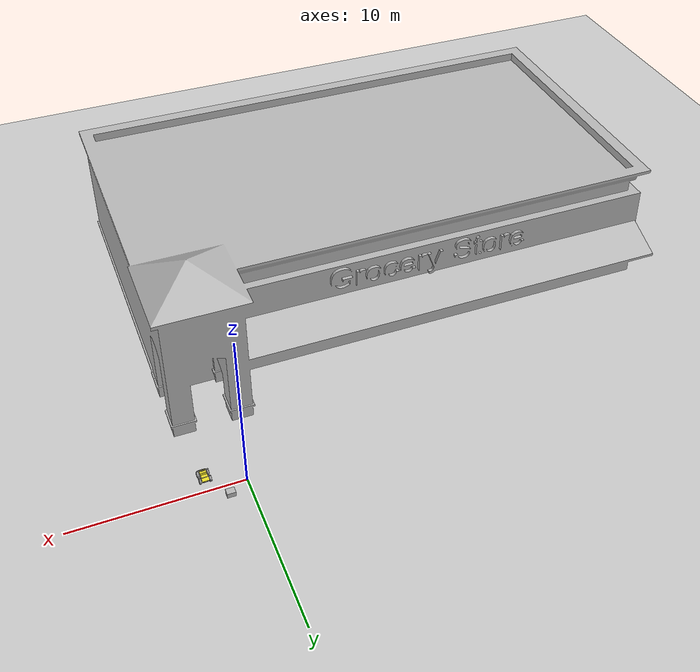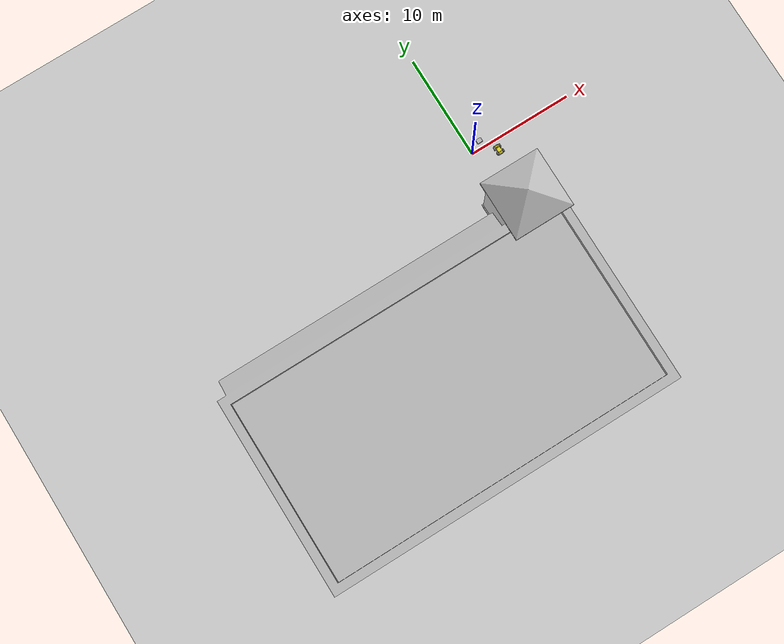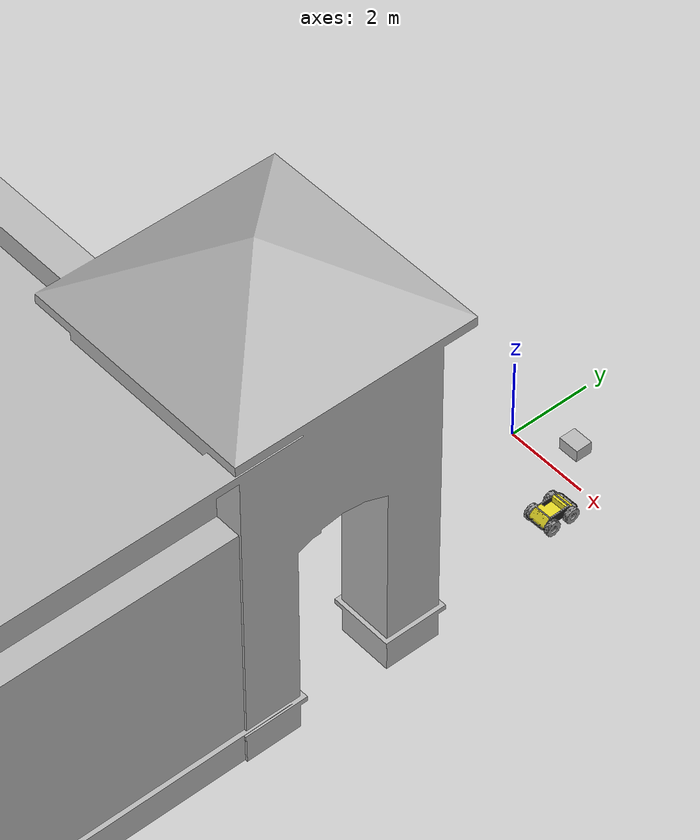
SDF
<sdf version="1.7">
 <world name="default">
  <light name="sun" type="directional">
   <pose>0 0 10 0 -0 0</pose>
   <diffuse>0.8 0.8 0.8 1</diffuse>
   <specular>0.2 0.2 0.2 1</specular>
   <attenuation>
    <range>1000</range>
    <constant>0.9</constant>
    <linear>0.01</linear>
    <quadratic>0.001</quadratic>
   </attenuation>
   <direction>-0.5 0.1 -0.9</direction>
   <spot><inner_angle>0</inner_angle><outer_angle>0</outer_angle><falloff>0</falloff></spot>
  </light>
  <model name="ground_plane">
   <static>1</static>
   <link name="link">
    <collision name="collision">
     <geometry><plane><normal>0 0 1</normal><size>100 100</size></plane></geometry>
     <surface>
      <contact><collide_bitmask>65535</collide_bitmask></contact>
      <friction><ode><mu>100</mu><mu2>50</mu2></ode></friction>
     </surface>
    </collision>
    <visual name="visual">
     <cast_shadows>0</cast_shadows>
     <geometry><plane><normal>0 0 1</normal><size>100 100</size></plane></geometry>
     <material>
      <script><uri>file://media/materials/scripts/gazebo.material</uri><name>Gazebo/Grey</name></script>
     </material>
    </visual>
   </link>
  </model>
  <gravity>0 0 -9.8</gravity>
  <magnetic_field>6e-06 2.3e-05 -4.2e-05</magnetic_field>
  <atmosphere type="adiabatic"/>
  <physics type="ode">
   <max_step_size>0.001</max_step_size>
   <real_time_factor>1</real_time_factor>
   <real_time_update_rate>1000</real_time_update_rate>
  </physics>
  <scene><ambient>0.4 0.4 0.4 1</ambient><background>0.7 0.7 0.7 1</background><shadows>0</shadows></scene>
  <spherical_coordinates>
   <surface_model>EARTH_WGS84</surface_model>
   <latitude_deg>0</latitude_deg>
   <longitude_deg>0</longitude_deg>
   <elevation>0</elevation>
   <heading_deg>0</heading_deg>
  </spherical_coordinates>
  <model name="husky">
   <pose>2.18473 -0.966425 0.142753 -0 -1e-05 1.59103</pose>
   <link name="base_link">
    <collision name="collision">
     <pose>0 0 0.1 0 -0 0</pose>
     <geometry><box><size>1.0074 0.5709 0.2675</size></box></geometry>
    </collision>
    <inertial>
     <mass>33.855</mass>
     <pose>-0.085613 -0.00084 0.238145 0 -0 0</pose>
     <inertia>
      <ixx>2.2343</ixx>
      <ixy>-0.023642</ixy>
      <ixz>0.275174</ixz>
      <iyy>3.42518</iyy>
      <iyz>0.00239624</iyz>
      <izz>2.1241</izz>
     </inertia>
    </inertial>
    <visual name="base">
     <geometry><mesh><uri>model://husky/meshes/base_link.stl</uri></mesh></geometry>
     <material><script><name>Gazebo/FlatBlack</name><uri>__default__</uri></script></material>
    </visual>
    <visual name="top_plate">
     <geometry><mesh><uri>model://husky/meshes/top_plate.stl</uri></mesh></geometry>
     <material><script><name>Gazebo/Yellow</name><uri>__default__</uri></script></material>
    </visual>
    <visual name="front_bumper">
     <pose>0.47 0 0.091 0 -0 0</pose>
     <geometry><mesh><uri>model://husky/meshes/bumper.stl</uri></mesh></geometry>
     <material><script><name>Gazebo/FlatBlack</name><uri>__default__</uri></script></material>
    </visual>
    <visual name="rear_bumper">
     <pose>-0.47 0 0.091 0 -0 3.141</pose>
     <geometry><mesh><uri>model://husky/meshes/bumper.stl</uri></mesh></geometry>
     <material><script><name>Gazebo/FlatBlack</name><uri>__default__</uri></script></material>
    </visual>
    <visual name="user_rail">
     <pose>0.272 0 0.245 0 -0 0</pose>
     <geometry><mesh><uri>model://husky/meshes/user_rail.stl</uri></mesh></geometry>
     <material><script><name>Gazebo/Grey</name><uri>__default__</uri></script></material>
    </visual>
   </link>
   <link name="back_left_wheel">
    <pose>-0.256 0.285475 0.035 0 -0 0</pose>
    <inertial>
     <mass>2.6357</mass>
     <inertia>
      <ixx>0.0246688</ixx>
      <ixy>0</ixy>
      <ixz>0</ixz>
      <iyy>0.0246688</iyy>
      <iyz>0</iyz>
      <izz>0.0441058</izz>
     </inertia>
    </inertial>
    <collision name="back_left_wheel_collision">
     <pose>0 0 0 -1.5707 0 0</pose>
     <geometry><cylinder><radius>0.17775</radius><length>0.1143</length></cylinder></geometry>
     <surface>
      <friction><ode><mu>100000</mu><mu2>100000</mu2><slip1>0</slip1><slip2>0</slip2></ode></friction>
     </surface>
    </collision>
    <visual name="back_left_wheel">
     <pose>0 0 0 -3.14159 0 0</pose>
     <geometry><mesh><uri>model://husky/meshes/wheel.stl</uri></mesh></geometry>
     <material><script><name>Gazebo/Grey</name><uri>__default__</uri></script></material>
    </visual>
   </link>
   <joint name="back_left_joint" type="revolute">
    <parent>base_link</parent>
    <child>back_left_wheel</child>
    <axis>
     <xyz expressed_in="__model__">0 1 0</xyz>
     <limit><lower>-1e+16</lower><upper>1e+16</upper></limit>
     <dynamics><spring_reference>0</spring_reference><spring_stiffness>0</spring_stiffness></dynamics>
    </axis>
    <physics><ode><limit><cfm>0</cfm><erp>0.9</erp></limit></ode></physics>
   </joint>
   <link name="back_right_wheel">
    <pose>-0.256 -0.285475 0.035 0 -0 0</pose>
    <inertial>
     <mass>2.6357</mass>
     <inertia>
      <ixx>0.0246688</ixx>
      <ixy>0</ixy>
      <ixz>0</ixz>
      <iyy>0.0246688</iyy>
      <iyz>0</iyz>
      <izz>0.0441058</izz>
     </inertia>
    </inertial>
    <collision name="back_right_wheel_collision">
     <pose>0 0 0 -1.5707 0 0</pose>
     <geometry><cylinder><radius>0.17775</radius><length>0.1143</length></cylinder></geometry>
     <surface>
      <friction><ode><mu>100000</mu><mu2>100000</mu2><slip1>0</slip1><slip2>0</slip2></ode></friction>
     </surface>
    </collision>
    <visual name="back_right_wheel">
     <pose>0 0 0 -3.14159 0 0</pose>
     <geometry><mesh><uri>model://husky/meshes/wheel.stl</uri></mesh></geometry>
     <material><script><name>Gazebo/Grey</name><uri>__default__</uri></script></material>
    </visual>
   </link>
   <joint name="back_right_joint" type="revolute">
    <parent>base_link</parent>
    <child>back_right_wheel</child>
    <axis>
     <xyz expressed_in="__model__">0 1 0</xyz>
     <limit><lower>-1e+16</lower><upper>1e+16</upper></limit>
     <dynamics><spring_reference>0</spring_reference><spring_stiffness>0</spring_stiffness></dynamics>
    </axis>
    <physics><ode><limit><cfm>0</cfm><erp>0.9</erp></limit></ode></physics>
   </joint>
   <link name="front_left_wheel">
    <pose>0.256 0.285475 0.035 0 -0 0</pose>
    <inertial>
     <mass>2.6357</mass>
     <inertia>
      <ixx>0.0246688</ixx>
      <ixy>0</ixy>
      <ixz>0</ixz>
      <iyy>0.0246688</iyy>
      <iyz>0</iyz>
      <izz>0.0441058</izz>
     </inertia>
    </inertial>
    <collision name="front_left_wheel_collision">
     <pose>0 0 0 -1.5707 0 0</pose>
     <geometry><cylinder><radius>0.17775</radius><length>0.1143</length></cylinder></geometry>
     <surface>
      <friction><ode><mu>100000</mu><mu2>100000</mu2><slip1>0</slip1><slip2>0</slip2></ode></friction>
     </surface>
    </collision>
    <visual name="front_left_wheel">
     <pose>0 0 0 -3.14159 0 0</pose>
     <geometry><mesh><uri>model://husky/meshes/wheel.stl</uri></mesh></geometry>
     <material><script><name>Gazebo/Grey</name><uri>__default__</uri></script></material>
    </visual>
   </link>
   <joint name="front_left_joint" type="revolute">
    <parent>base_link</parent>
    <child>front_left_wheel</child>
    <axis>
     <xyz expressed_in="__model__">0 1 0</xyz>
     <limit><lower>-1e+16</lower><upper>1e+16</upper></limit>
     <dynamics><spring_reference>0</spring_reference><spring_stiffness>0</spring_stiffness></dynamics>
    </axis>
    <physics><ode><limit><cfm>0</cfm><erp>0.9</erp></limit></ode></physics>
   </joint>
   <link name="front_right_wheel">
    <pose>0.256 -0.285475 0.035 0 -0 0</pose>
    <inertial>
     <mass>2.6357</mass>
     <inertia>
      <ixx>0.0246688</ixx>
      <ixy>0</ixy>
      <ixz>0</ixz>
      <iyy>0.0246688</iyy>
      <iyz>0</iyz>
      <izz>0.0441058</izz>
     </inertia>
    </inertial>
    <collision name="front_right_wheel_collision">
     <pose>0 0 0 -1.5707 0 0</pose>
     <geometry><cylinder><radius>0.17775</radius><length>0.1143</length></cylinder></geometry>
     <surface>
      <friction><ode><mu>100000</mu><mu2>100000</mu2><slip1>0</slip1><slip2>0</slip2></ode></friction>
     </surface>
    </collision>
    <visual name="front_right_wheel">
     <pose>0 0 0 -3.14159 0 0</pose>
     <geometry><mesh><uri>model://husky/meshes/wheel.stl</uri></mesh></geometry>
     <material><script><name>Gazebo/Grey</name><uri>__default__</uri></script></material>
    </visual>
   </link>
   <joint name="front_right_joint" type="revolute">
    <parent>base_link</parent>
    <child>front_right_wheel</child>
    <axis>
     <xyz expressed_in="__model__">0 1 0</xyz>
     <limit><lower>-1e+16</lower><upper>1e+16</upper></limit>
     <dynamics><spring_reference>0</spring_reference><spring_stiffness>0</spring_stiffness></dynamics>
    </axis>
    <physics><ode><limit><cfm>0</cfm><erp>0.9</erp></limit></ode></physics>
   </joint>
   <plugin name="husky_diff_controller" filename="libhusky_gazebo_plugins.so">
    <alwaysOn>1</alwaysOn>
    <updateRate>100.0</updateRate>
    <backLeftJoint>back_left_joint</backLeftJoint>
    <backRightJoint>back_right_joint</backRightJoint>
    <frontLeftJoint>front_left_joint</frontLeftJoint>
    <frontRightJoint>front_right_joint</frontRightJoint>
    <wheelSeparation>0.5709</wheelSeparation>
    <wheelDiameter>0.3555</wheelDiameter>
    <torque>35</torque>
   </plugin>
  </model>
  <model name="cardboard_box">
   <pose>1.13373 0.6459 0.149 0 -0 0</pose>
   <link name="link">
    <inertial>
     <mass>2</mass>
     <inertia>
      <ixx>0.0416667</ixx>
      <ixy>0</ixy>
      <ixz>0</ixz>
      <iyy>0.0566667</iyy>
      <iyz>0</iyz>
      <izz>0.0683333</izz>
     </inertia>
    </inertial>
    <collision name="collision">
     <geometry><box><size>0.5 0.4 0.3</size></box></geometry>
     <surface>
      <friction><ode><mu>1</mu><mu2>1</mu2></ode></friction>
      <contact><ode><kp>1e+07</kp><kd>1</kd><min_depth>0.001</min_depth><max_vel>0.1</max_vel></ode></contact>
     </surface>
    </collision>
    <visual name="visual">
     <pose>0 0 -0.15 0 -0 0</pose>
     <geometry>
      <mesh><uri>model://cardboard_box/meshes/cardboard_box.dae</uri><scale>1.25932 1.00745 0.755591</scale></mesh>
     </geometry>
    </visual>
   </link>
  </model>
  <model name="grocery_store">
   <static>1</static>
   <link name="link">
    <collision name="collision">
     <pose>0 0 4.04605 0 -0 0</pose>
     <geometry><box><size>32.1985 17.5425 8.09209</size></box></geometry>
    </collision>
    <visual name="visual">
     <pose>0 -1.96155 0 0 -0 0</pose>
     <geometry><mesh><uri>model://grocery_store/meshes/grocery_store.dae</uri></mesh></geometry>
    </visual>
   </link>
   <pose>-13.2054 -17.1144 0 0 -0 0</pose>
  </model>
 </world>
</sdf>
